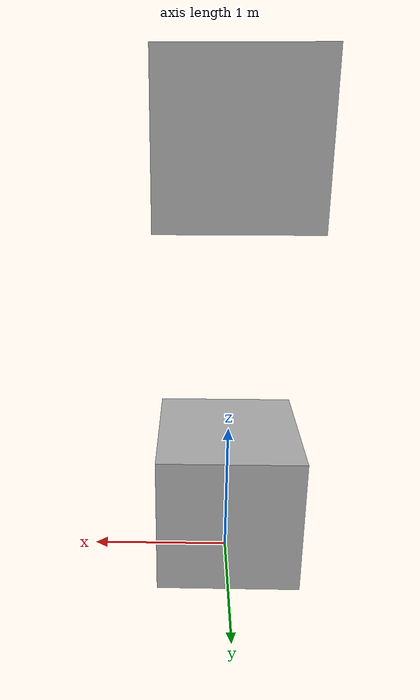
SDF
<?xml version='1.0'?>
<sdf version="1.4">

  <model name="my_model">
    <pose>0 0 0.5 0 0 0</pose>
    <link name="base_link">
      <inertial>
        <mass>1.0</mass>
        <inertia> <!-- interias are tricky to compute -->
          <ixx>0.083</ixx>       <!-- for a box: ixx = 0.083 * mass * (y*y + z*z) -->
          <ixy>0.0</ixy>         <!-- for a box: ixy = 0 -->
          <ixz>0.0</ixz>         <!-- for a box: ixz = 0 -->
          <iyy>0.083</iyy>       <!-- for a box: iyy = 0.083 * mass * (x*x + z*z) -->
          <iyz>0.0</iyz>         <!-- for a box: iyz = 0 -->
          <izz>0.083</izz>       <!-- for a box: izz = 0.083 * mass * (x*x + y*y) -->
        </inertia>
      </inertial>
      <collision name="collision">
        <geometry>
          <box>
            <size>1 1 1</size>
          </box>
        </geometry>
      </collision>
      <visual name="visual">
        <geometry>
          <box>
            <size>1 1 1</size>
          </box>
        </geometry>
      </visual>
    </link>

    <link name="child_link">
      <pose>0 0 2.5 0 0 0</pose>
      <inertial>
        <mass>1.0</mass>
        <inertia> <!-- interias are tricky to compute -->
          <ixx>0.083</ixx>       <!-- for a box: ixx = 0.083 * mass * (y*y + z*z) -->
          <ixy>0.0</ixy>         <!-- for a box: ixy = 0 -->
          <ixz>0.0</ixz>         <!-- for a box: ixz = 0 -->
          <iyy>0.083</iyy>       <!-- for a box: iyy = 0.083 * mass * (x*x + z*z) -->
          <iyz>0.0</iyz>         <!-- for a box: iyz = 0 -->
          <izz>0.083</izz>       <!-- for a box: izz = 0.083 * mass * (x*x + y*y) -->
        </inertia>
      </inertial>
      <collision name="collision">
        <geometry>
          <box>
            <size>1 1 1</size>
          </box>
        </geometry>
      </collision>
      <visual name="visual">
        <geometry>
          <box>
            <size>1 1 1</size>
          </box>
        </geometry>
      </visual>
    </link>

    <joint name="joint" type="revolute">
      <parent>base_link</parent>
      <child>child_link</child>
      <axis>
        <xyz>0 0 0</xyz>
        <limit>
          <upper>0</upper>
          <lower>0</lower>
        </limit>
      </axis>
    </joint>

  </model>
</sdf>
